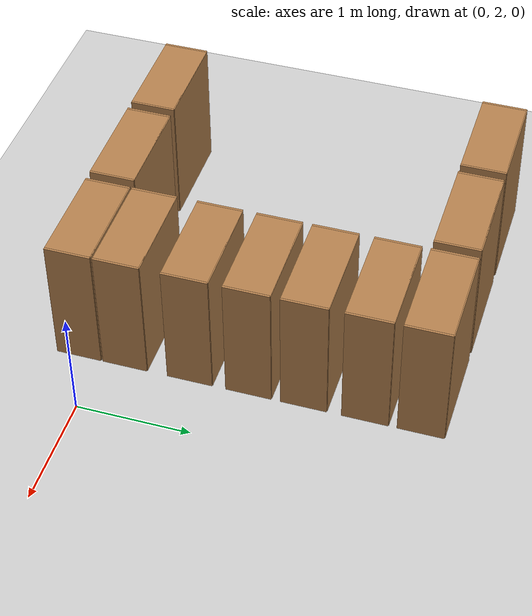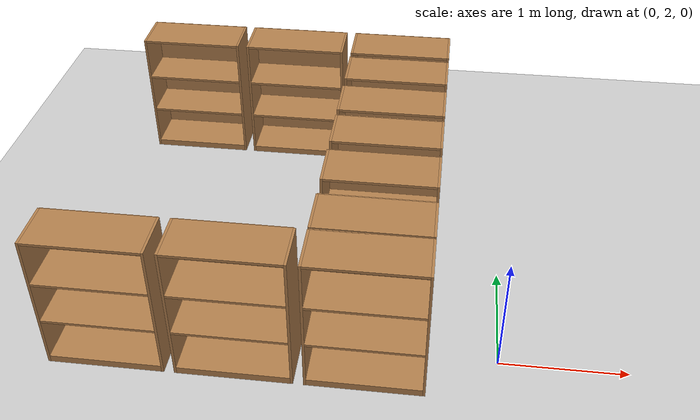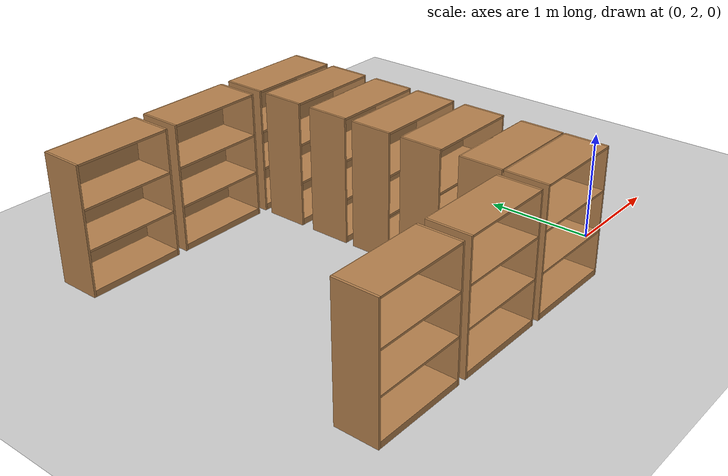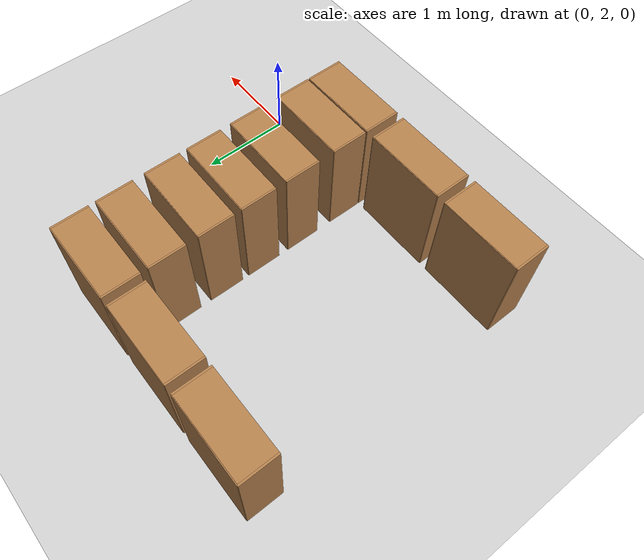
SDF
<sdf version="1.4">
 <world name="default">
  <model name="ground_plane">
   <static>1</static>
   <link name="link">
    <collision name="collision">
     <geometry><plane><normal>0 0 1</normal><size>100 100</size></plane></geometry>
     <surface><friction><ode><mu>100</mu><mu2>50</mu2></ode></friction></surface>
    </collision>
    <visual name="visual">
     <cast_shadows>0</cast_shadows>
     <geometry><plane><normal>0 0 1</normal><size>100 100</size></plane></geometry>
     <material>
      <script><uri>file://media/materials/scripts/gazebo.material</uri><name>Gazebo/Grey</name></script>
     </material>
    </visual>
    <velocity_decay><linear>0</linear><angular>0</angular></velocity_decay>
   </link>
  </model>
  <model name="bookshelf_1">
   <static>1</static>
   <link name="link">
    <inertial><mass>1</mass></inertial>
    <collision name="back">
     <pose>0 0.005 0.6 0 -0 0</pose>
     <geometry><box><size>0.9 0.01 1.2</size></box></geometry>
    </collision>
    <visual name="visual1">
     <pose>0 0.005 0.6 0 -0 0</pose>
     <geometry><box><size>0.9 0.01 1.2</size></box></geometry>
     <material>
      <script><uri>file://media/materials/scripts/gazebo.material</uri><name>Gazebo/Wood</name></script>
     </material>
    </visual>
    <collision name="left_side">
     <pose>0.45 -0.195 0.6 0 -0 0</pose>
     <geometry><box><size>0.02 0.4 1.2</size></box></geometry>
    </collision>
    <visual name="visual2">
     <pose>0.45 -0.195 0.6 0 -0 0</pose>
     <geometry><box><size>0.02 0.4 1.2</size></box></geometry>
     <material>
      <script><uri>file://media/materials/scripts/gazebo.material</uri><name>Gazebo/Wood</name></script>
     </material>
    </visual>
    <collision name="right_side">
     <pose>-0.45 -0.195 0.6 0 -0 0</pose>
     <geometry><box><size>0.02 0.4 1.2</size></box></geometry>
    </collision>
    <visual name="visual3">
     <pose>-0.45 -0.195 0.6 0 -0 0</pose>
     <geometry><box><size>0.02 0.4 1.2</size></box></geometry>
     <material>
      <script><uri>file://media/materials/scripts/gazebo.material</uri><name>Gazebo/Wood</name></script>
     </material>
    </visual>
    <collision name="bottom">
     <pose>0 -0.195 0.03 0 -0 0</pose>
     <geometry><box><size>0.88 0.4 0.06</size></box></geometry>
    </collision>
    <visual name="visual4">
     <pose>0 -0.195 0.03 0 -0 0</pose>
     <geometry><box><size>0.88 0.4 0.06</size></box></geometry>
     <material>
      <script><uri>file://media/materials/scripts/gazebo.material</uri><name>Gazebo/Wood</name></script>
     </material>
    </visual>
    <collision name="top">
     <pose>0 -0.195 1.19 0 -0 0</pose>
     <geometry><box><size>0.88 0.4 0.02</size></box></geometry>
    </collision>
    <visual name="visual5">
     <pose>0 -0.195 1.19 0 -0 0</pose>
     <geometry><box><size>0.88 0.4 0.02</size></box></geometry>
     <material>
      <script><uri>file://media/materials/scripts/gazebo.material</uri><name>Gazebo/Wood</name></script>
     </material>
    </visual>
    <collision name="low_shelf">
     <pose>0 -0.195 0.43 0 -0 0</pose>
     <geometry><box><size>0.88 0.4 0.02</size></box></geometry>
    </collision>
    <visual name="visual6">
     <pose>0 -0.195 0.43 0 -0 0</pose>
     <geometry><box><size>0.88 0.4 0.02</size></box></geometry>
     <material>
      <script><uri>file://media/materials/scripts/gazebo.material</uri><name>Gazebo/Wood</name></script>
     </material>
    </visual>
    <collision name="high_shelf">
     <pose>0 -0.195 0.8 0 -0 0</pose>
     <geometry><box><size>0.88 0.4 0.02</size></box></geometry>
    </collision>
    <visual name="visual7">
     <pose>0 -0.195 0.8 0 -0 0</pose>
     <geometry><box><size>0.88 0.4 0.02</size></box></geometry>
     <material>
      <script><uri>file://media/materials/scripts/gazebo.material</uri><name>Gazebo/Wood</name></script>
     </material>
    </visual>
    <velocity_decay><linear>0</linear><angular>0</angular></velocity_decay>
   </link>
   <pose>-3 2 0 0 -0 0</pose>
  </model>
  <model name="bookshelf_2">
   <static>1</static>
   <link name="link">
    <inertial><mass>1</mass></inertial>
    <collision name="back">
     <pose>0 0.005 0.6 0 -0 0</pose>
     <geometry><box><size>0.9 0.01 1.2</size></box></geometry>
    </collision>
    <visual name="visual1">
     <pose>0 0.005 0.6 0 -0 0</pose>
     <geometry><box><size>0.9 0.01 1.2</size></box></geometry>
     <material>
      <script><uri>file://media/materials/scripts/gazebo.material</uri><name>Gazebo/Wood</name></script>
     </material>
    </visual>
    <collision name="left_side">
     <pose>0.45 -0.195 0.6 0 -0 0</pose>
     <geometry><box><size>0.02 0.4 1.2</size></box></geometry>
    </collision>
    <visual name="visual2">
     <pose>0.45 -0.195 0.6 0 -0 0</pose>
     <geometry><box><size>0.02 0.4 1.2</size></box></geometry>
     <material>
      <script><uri>file://media/materials/scripts/gazebo.material</uri><name>Gazebo/Wood</name></script>
     </material>
    </visual>
    <collision name="right_side">
     <pose>-0.45 -0.195 0.6 0 -0 0</pose>
     <geometry><box><size>0.02 0.4 1.2</size></box></geometry>
    </collision>
    <visual name="visual3">
     <pose>-0.45 -0.195 0.6 0 -0 0</pose>
     <geometry><box><size>0.02 0.4 1.2</size></box></geometry>
     <material>
      <script><uri>file://media/materials/scripts/gazebo.material</uri><name>Gazebo/Wood</name></script>
     </material>
    </visual>
    <collision name="bottom">
     <pose>0 -0.195 0.03 0 -0 0</pose>
     <geometry><box><size>0.88 0.4 0.06</size></box></geometry>
    </collision>
    <visual name="visual4">
     <pose>0 -0.195 0.03 0 -0 0</pose>
     <geometry><box><size>0.88 0.4 0.06</size></box></geometry>
     <material>
      <script><uri>file://media/materials/scripts/gazebo.material</uri><name>Gazebo/Wood</name></script>
     </material>
    </visual>
    <collision name="top">
     <pose>0 -0.195 1.19 0 -0 0</pose>
     <geometry><box><size>0.88 0.4 0.02</size></box></geometry>
    </collision>
    <visual name="visual5">
     <pose>0 -0.195 1.19 0 -0 0</pose>
     <geometry><box><size>0.88 0.4 0.02</size></box></geometry>
     <material>
      <script><uri>file://media/materials/scripts/gazebo.material</uri><name>Gazebo/Wood</name></script>
     </material>
    </visual>
    <collision name="low_shelf">
     <pose>0 -0.195 0.43 0 -0 0</pose>
     <geometry><box><size>0.88 0.4 0.02</size></box></geometry>
    </collision>
    <visual name="visual6">
     <pose>0 -0.195 0.43 0 -0 0</pose>
     <geometry><box><size>0.88 0.4 0.02</size></box></geometry>
     <material>
      <script><uri>file://media/materials/scripts/gazebo.material</uri><name>Gazebo/Wood</name></script>
     </material>
    </visual>
    <collision name="high_shelf">
     <pose>0 -0.195 0.8 0 -0 0</pose>
     <geometry><box><size>0.88 0.4 0.02</size></box></geometry>
    </collision>
    <visual name="visual7">
     <pose>0 -0.195 0.8 0 -0 0</pose>
     <geometry><box><size>0.88 0.4 0.02</size></box></geometry>
     <material>
      <script><uri>file://media/materials/scripts/gazebo.material</uri><name>Gazebo/Wood</name></script>
     </material>
    </visual>
    <velocity_decay><linear>0</linear><angular>0</angular></velocity_decay>
   </link>
   <pose>-2 2 0 0 -0 0</pose>
  </model>
  <model name="bookshelf_3">
   <static>1</static>
   <link name="link">
    <inertial><mass>1</mass></inertial>
    <collision name="back">
     <pose>0 0.005 0.6 0 -0 0</pose>
     <geometry><box><size>0.9 0.01 1.2</size></box></geometry>
    </collision>
    <visual name="visual1">
     <pose>0 0.005 0.6 0 -0 0</pose>
     <geometry><box><size>0.9 0.01 1.2</size></box></geometry>
     <material>
      <script><uri>file://media/materials/scripts/gazebo.material</uri><name>Gazebo/Wood</name></script>
     </material>
    </visual>
    <collision name="left_side">
     <pose>0.45 -0.195 0.6 0 -0 0</pose>
     <geometry><box><size>0.02 0.4 1.2</size></box></geometry>
    </collision>
    <visual name="visual2">
     <pose>0.45 -0.195 0.6 0 -0 0</pose>
     <geometry><box><size>0.02 0.4 1.2</size></box></geometry>
     <material>
      <script><uri>file://media/materials/scripts/gazebo.material</uri><name>Gazebo/Wood</name></script>
     </material>
    </visual>
    <collision name="right_side">
     <pose>-0.45 -0.195 0.6 0 -0 0</pose>
     <geometry><box><size>0.02 0.4 1.2</size></box></geometry>
    </collision>
    <visual name="visual3">
     <pose>-0.45 -0.195 0.6 0 -0 0</pose>
     <geometry><box><size>0.02 0.4 1.2</size></box></geometry>
     <material>
      <script><uri>file://media/materials/scripts/gazebo.material</uri><name>Gazebo/Wood</name></script>
     </material>
    </visual>
    <collision name="bottom">
     <pose>0 -0.195 0.03 0 -0 0</pose>
     <geometry><box><size>0.88 0.4 0.06</size></box></geometry>
    </collision>
    <visual name="visual4">
     <pose>0 -0.195 0.03 0 -0 0</pose>
     <geometry><box><size>0.88 0.4 0.06</size></box></geometry>
     <material>
      <script><uri>file://media/materials/scripts/gazebo.material</uri><name>Gazebo/Wood</name></script>
     </material>
    </visual>
    <collision name="top">
     <pose>0 -0.195 1.19 0 -0 0</pose>
     <geometry><box><size>0.88 0.4 0.02</size></box></geometry>
    </collision>
    <visual name="visual5">
     <pose>0 -0.195 1.19 0 -0 0</pose>
     <geometry><box><size>0.88 0.4 0.02</size></box></geometry>
     <material>
      <script><uri>file://media/materials/scripts/gazebo.material</uri><name>Gazebo/Wood</name></script>
     </material>
    </visual>
    <collision name="low_shelf">
     <pose>0 -0.195 0.43 0 -0 0</pose>
     <geometry><box><size>0.88 0.4 0.02</size></box></geometry>
    </collision>
    <visual name="visual6">
     <pose>0 -0.195 0.43 0 -0 0</pose>
     <geometry><box><size>0.88 0.4 0.02</size></box></geometry>
     <material>
      <script><uri>file://media/materials/scripts/gazebo.material</uri><name>Gazebo/Wood</name></script>
     </material>
    </visual>
    <collision name="high_shelf">
     <pose>0 -0.195 0.8 0 -0 0</pose>
     <geometry><box><size>0.88 0.4 0.02</size></box></geometry>
    </collision>
    <visual name="visual7">
     <pose>0 -0.195 0.8 0 -0 0</pose>
     <geometry><box><size>0.88 0.4 0.02</size></box></geometry>
     <material>
      <script><uri>file://media/materials/scripts/gazebo.material</uri><name>Gazebo/Wood</name></script>
     </material>
    </visual>
    <velocity_decay><linear>0</linear><angular>0</angular></velocity_decay>
   </link>
   <pose>-1 2 0 0 -0 0</pose>
  </model>
  <model name="bookshelf_6">
   <static>1</static>
   <link name="link">
    <inertial><mass>1</mass></inertial>
    <collision name="back">
     <pose>0 0.005 0.6 0 -0 0</pose>
     <geometry><box><size>0.9 0.01 1.2</size></box></geometry>
    </collision>
    <visual name="visual1">
     <pose>0 0.005 0.6 0 -0 0</pose>
     <geometry><box><size>0.9 0.01 1.2</size></box></geometry>
     <material>
      <script><uri>file://media/materials/scripts/gazebo.material</uri><name>Gazebo/Wood</name></script>
     </material>
    </visual>
    <collision name="left_side">
     <pose>0.45 -0.195 0.6 0 -0 0</pose>
     <geometry><box><size>0.02 0.4 1.2</size></box></geometry>
    </collision>
    <visual name="visual2">
     <pose>0.45 -0.195 0.6 0 -0 0</pose>
     <geometry><box><size>0.02 0.4 1.2</size></box></geometry>
     <material>
      <script><uri>file://media/materials/scripts/gazebo.material</uri><name>Gazebo/Wood</name></script>
     </material>
    </visual>
    <collision name="right_side">
     <pose>-0.45 -0.195 0.6 0 -0 0</pose>
     <geometry><box><size>0.02 0.4 1.2</size></box></geometry>
    </collision>
    <visual name="visual3">
     <pose>-0.45 -0.195 0.6 0 -0 0</pose>
     <geometry><box><size>0.02 0.4 1.2</size></box></geometry>
     <material>
      <script><uri>file://media/materials/scripts/gazebo.material</uri><name>Gazebo/Wood</name></script>
     </material>
    </visual>
    <collision name="bottom">
     <pose>0 -0.195 0.03 0 -0 0</pose>
     <geometry><box><size>0.88 0.4 0.06</size></box></geometry>
    </collision>
    <visual name="visual4">
     <pose>0 -0.195 0.03 0 -0 0</pose>
     <geometry><box><size>0.88 0.4 0.06</size></box></geometry>
     <material>
      <script><uri>file://media/materials/scripts/gazebo.material</uri><name>Gazebo/Wood</name></script>
     </material>
    </visual>
    <collision name="top">
     <pose>0 -0.195 1.19 0 -0 0</pose>
     <geometry><box><size>0.88 0.4 0.02</size></box></geometry>
    </collision>
    <visual name="visual5">
     <pose>0 -0.195 1.19 0 -0 0</pose>
     <geometry><box><size>0.88 0.4 0.02</size></box></geometry>
     <material>
      <script><uri>file://media/materials/scripts/gazebo.material</uri><name>Gazebo/Wood</name></script>
     </material>
    </visual>
    <collision name="low_shelf">
     <pose>0 -0.195 0.43 0 -0 0</pose>
     <geometry><box><size>0.88 0.4 0.02</size></box></geometry>
    </collision>
    <visual name="visual6">
     <pose>0 -0.195 0.43 0 -0 0</pose>
     <geometry><box><size>0.88 0.4 0.02</size></box></geometry>
     <material>
      <script><uri>file://media/materials/scripts/gazebo.material</uri><name>Gazebo/Wood</name></script>
     </material>
    </visual>
    <collision name="high_shelf">
     <pose>0 -0.195 0.8 0 -0 0</pose>
     <geometry><box><size>0.88 0.4 0.02</size></box></geometry>
    </collision>
    <visual name="visual7">
     <pose>0 -0.195 0.8 0 -0 0</pose>
     <geometry><box><size>0.88 0.4 0.02</size></box></geometry>
     <material>
      <script><uri>file://media/materials/scripts/gazebo.material</uri><name>Gazebo/Wood</name></script>
     </material>
    </visual>
    <velocity_decay><linear>0</linear><angular>0</angular></velocity_decay>
   </link>
   <pose>-3 5 0 0 -0 0</pose>
  </model>
  <model name="bookshelf_7">
   <static>1</static>
   <link name="link">
    <inertial><mass>1</mass></inertial>
    <collision name="back">
     <pose>0 0.005 0.6 0 -0 0</pose>
     <geometry><box><size>0.9 0.01 1.2</size></box></geometry>
    </collision>
    <visual name="visual1">
     <pose>0 0.005 0.6 0 -0 0</pose>
     <geometry><box><size>0.9 0.01 1.2</size></box></geometry>
     <material>
      <script><uri>file://media/materials/scripts/gazebo.material</uri><name>Gazebo/Wood</name></script>
     </material>
    </visual>
    <collision name="left_side">
     <pose>0.45 -0.195 0.6 0 -0 0</pose>
     <geometry><box><size>0.02 0.4 1.2</size></box></geometry>
    </collision>
    <visual name="visual2">
     <pose>0.45 -0.195 0.6 0 -0 0</pose>
     <geometry><box><size>0.02 0.4 1.2</size></box></geometry>
     <material>
      <script><uri>file://media/materials/scripts/gazebo.material</uri><name>Gazebo/Wood</name></script>
     </material>
    </visual>
    <collision name="right_side">
     <pose>-0.45 -0.195 0.6 0 -0 0</pose>
     <geometry><box><size>0.02 0.4 1.2</size></box></geometry>
    </collision>
    <visual name="visual3">
     <pose>-0.45 -0.195 0.6 0 -0 0</pose>
     <geometry><box><size>0.02 0.4 1.2</size></box></geometry>
     <material>
      <script><uri>file://media/materials/scripts/gazebo.material</uri><name>Gazebo/Wood</name></script>
     </material>
    </visual>
    <collision name="bottom">
     <pose>0 -0.195 0.03 0 -0 0</pose>
     <geometry><box><size>0.88 0.4 0.06</size></box></geometry>
    </collision>
    <visual name="visual4">
     <pose>0 -0.195 0.03 0 -0 0</pose>
     <geometry><box><size>0.88 0.4 0.06</size></box></geometry>
     <material>
      <script><uri>file://media/materials/scripts/gazebo.material</uri><name>Gazebo/Wood</name></script>
     </material>
    </visual>
    <collision name="top">
     <pose>0 -0.195 1.19 0 -0 0</pose>
     <geometry><box><size>0.88 0.4 0.02</size></box></geometry>
    </collision>
    <visual name="visual5">
     <pose>0 -0.195 1.19 0 -0 0</pose>
     <geometry><box><size>0.88 0.4 0.02</size></box></geometry>
     <material>
      <script><uri>file://media/materials/scripts/gazebo.material</uri><name>Gazebo/Wood</name></script>
     </material>
    </visual>
    <collision name="low_shelf">
     <pose>0 -0.195 0.43 0 -0 0</pose>
     <geometry><box><size>0.88 0.4 0.02</size></box></geometry>
    </collision>
    <visual name="visual6">
     <pose>0 -0.195 0.43 0 -0 0</pose>
     <geometry><box><size>0.88 0.4 0.02</size></box></geometry>
     <material>
      <script><uri>file://media/materials/scripts/gazebo.material</uri><name>Gazebo/Wood</name></script>
     </material>
    </visual>
    <collision name="high_shelf">
     <pose>0 -0.195 0.8 0 -0 0</pose>
     <geometry><box><size>0.88 0.4 0.02</size></box></geometry>
    </collision>
    <visual name="visual7">
     <pose>0 -0.195 0.8 0 -0 0</pose>
     <geometry><box><size>0.88 0.4 0.02</size></box></geometry>
     <material>
      <script><uri>file://media/materials/scripts/gazebo.material</uri><name>Gazebo/Wood</name></script>
     </material>
    </visual>
    <velocity_decay><linear>0</linear><angular>0</angular></velocity_decay>
   </link>
   <pose>-2 5 0 0 -0 0</pose>
  </model>
  <model name="bookshelf_8">
   <static>1</static>
   <link name="link">
    <inertial><mass>1</mass></inertial>
    <collision name="back">
     <pose>0 0.005 0.6 0 -0 0</pose>
     <geometry><box><size>0.9 0.01 1.2</size></box></geometry>
    </collision>
    <visual name="visual1">
     <pose>0 0.005 0.6 0 -0 0</pose>
     <geometry><box><size>0.9 0.01 1.2</size></box></geometry>
     <material>
      <script><uri>file://media/materials/scripts/gazebo.material</uri><name>Gazebo/Wood</name></script>
     </material>
    </visual>
    <collision name="left_side">
     <pose>0.45 -0.195 0.6 0 -0 0</pose>
     <geometry><box><size>0.02 0.4 1.2</size></box></geometry>
    </collision>
    <visual name="visual2">
     <pose>0.45 -0.195 0.6 0 -0 0</pose>
     <geometry><box><size>0.02 0.4 1.2</size></box></geometry>
     <material>
      <script><uri>file://media/materials/scripts/gazebo.material</uri><name>Gazebo/Wood</name></script>
     </material>
    </visual>
    <collision name="right_side">
     <pose>-0.45 -0.195 0.6 0 -0 0</pose>
     <geometry><box><size>0.02 0.4 1.2</size></box></geometry>
    </collision>
    <visual name="visual3">
     <pose>-0.45 -0.195 0.6 0 -0 0</pose>
     <geometry><box><size>0.02 0.4 1.2</size></box></geometry>
     <material>
      <script><uri>file://media/materials/scripts/gazebo.material</uri><name>Gazebo/Wood</name></script>
     </material>
    </visual>
    <collision name="bottom">
     <pose>0 -0.195 0.03 0 -0 0</pose>
     <geometry><box><size>0.88 0.4 0.06</size></box></geometry>
    </collision>
    <visual name="visual4">
     <pose>0 -0.195 0.03 0 -0 0</pose>
     <geometry><box><size>0.88 0.4 0.06</size></box></geometry>
     <material>
      <script><uri>file://media/materials/scripts/gazebo.material</uri><name>Gazebo/Wood</name></script>
     </material>
    </visual>
    <collision name="top">
     <pose>0 -0.195 1.19 0 -0 0</pose>
     <geometry><box><size>0.88 0.4 0.02</size></box></geometry>
    </collision>
    <visual name="visual5">
     <pose>0 -0.195 1.19 0 -0 0</pose>
     <geometry><box><size>0.88 0.4 0.02</size></box></geometry>
     <material>
      <script><uri>file://media/materials/scripts/gazebo.material</uri><name>Gazebo/Wood</name></script>
     </material>
    </visual>
    <collision name="low_shelf">
     <pose>0 -0.195 0.43 0 -0 0</pose>
     <geometry><box><size>0.88 0.4 0.02</size></box></geometry>
    </collision>
    <visual name="visual6">
     <pose>0 -0.195 0.43 0 -0 0</pose>
     <geometry><box><size>0.88 0.4 0.02</size></box></geometry>
     <material>
      <script><uri>file://media/materials/scripts/gazebo.material</uri><name>Gazebo/Wood</name></script>
     </material>
    </visual>
    <collision name="high_shelf">
     <pose>0 -0.195 0.8 0 -0 0</pose>
     <geometry><box><size>0.88 0.4 0.02</size></box></geometry>
    </collision>
    <visual name="visual7">
     <pose>0 -0.195 0.8 0 -0 0</pose>
     <geometry><box><size>0.88 0.4 0.02</size></box></geometry>
     <material>
      <script><uri>file://media/materials/scripts/gazebo.material</uri><name>Gazebo/Wood</name></script>
     </material>
    </visual>
    <velocity_decay><linear>0</linear><angular>0</angular></velocity_decay>
   </link>
   <pose>-1 5 0 0 -0 0</pose>
  </model>
  <model name="bookshelf_11">
   <static>1</static>
   <link name="link">
    <inertial><mass>1</mass></inertial>
    <collision name="back">
     <pose>0 0.005 0.6 0 -0 0</pose>
     <geometry><box><size>0.9 0.01 1.2</size></box></geometry>
    </collision>
    <visual name="visual1">
     <pose>0 0.005 0.6 0 -0 0</pose>
     <geometry><box><size>0.9 0.01 1.2</size></box></geometry>
     <material>
      <script><uri>file://media/materials/scripts/gazebo.material</uri><name>Gazebo/Wood</name></script>
     </material>
    </visual>
    <collision name="left_side">
     <pose>0.45 -0.195 0.6 0 -0 0</pose>
     <geometry><box><size>0.02 0.4 1.2</size></box></geometry>
    </collision>
    <visual name="visual2">
     <pose>0.45 -0.195 0.6 0 -0 0</pose>
     <geometry><box><size>0.02 0.4 1.2</size></box></geometry>
     <material>
      <script><uri>file://media/materials/scripts/gazebo.material</uri><name>Gazebo/Wood</name></script>
     </material>
    </visual>
    <collision name="right_side">
     <pose>-0.45 -0.195 0.6 0 -0 0</pose>
     <geometry><box><size>0.02 0.4 1.2</size></box></geometry>
    </collision>
    <visual name="visual3">
     <pose>-0.45 -0.195 0.6 0 -0 0</pose>
     <geometry><box><size>0.02 0.4 1.2</size></box></geometry>
     <material>
      <script><uri>file://media/materials/scripts/gazebo.material</uri><name>Gazebo/Wood</name></script>
     </material>
    </visual>
    <collision name="bottom">
     <pose>0 -0.195 0.03 0 -0 0</pose>
     <geometry><box><size>0.88 0.4 0.06</size></box></geometry>
    </collision>
    <visual name="visual4">
     <pose>0 -0.195 0.03 0 -0 0</pose>
     <geometry><box><size>0.88 0.4 0.06</size></box></geometry>
     <material>
      <script><uri>file://media/materials/scripts/gazebo.material</uri><name>Gazebo/Wood</name></script>
     </material>
    </visual>
    <collision name="top">
     <pose>0 -0.195 1.19 0 -0 0</pose>
     <geometry><box><size>0.88 0.4 0.02</size></box></geometry>
    </collision>
    <visual name="visual5">
     <pose>0 -0.195 1.19 0 -0 0</pose>
     <geometry><box><size>0.88 0.4 0.02</size></box></geometry>
     <material>
      <script><uri>file://media/materials/scripts/gazebo.material</uri><name>Gazebo/Wood</name></script>
     </material>
    </visual>
    <collision name="low_shelf">
     <pose>0 -0.195 0.43 0 -0 0</pose>
     <geometry><box><size>0.88 0.4 0.02</size></box></geometry>
    </collision>
    <visual name="visual6">
     <pose>0 -0.195 0.43 0 -0 0</pose>
     <geometry><box><size>0.88 0.4 0.02</size></box></geometry>
     <material>
      <script><uri>file://media/materials/scripts/gazebo.material</uri><name>Gazebo/Wood</name></script>
     </material>
    </visual>
    <collision name="high_shelf">
     <pose>0 -0.195 0.8 0 -0 0</pose>
     <geometry><box><size>0.88 0.4 0.02</size></box></geometry>
    </collision>
    <visual name="visual7">
     <pose>0 -0.195 0.8 0 -0 0</pose>
     <geometry><box><size>0.88 0.4 0.02</size></box></geometry>
     <material>
      <script><uri>file://media/materials/scripts/gazebo.material</uri><name>Gazebo/Wood</name></script>
     </material>
    </visual>
    <velocity_decay><linear>0</linear><angular>0</angular></velocity_decay>
   </link>
   <pose>-1 2.41816 0 0 -0 0</pose>
  </model>
  <model name="bookshelf_12">
   <static>1</static>
   <link name="link">
    <inertial><mass>1</mass></inertial>
    <collision name="back">
     <pose>0 0.005 0.6 0 -0 0</pose>
     <geometry><box><size>0.9 0.01 1.2</size></box></geometry>
    </collision>
    <visual name="visual1">
     <pose>0 0.005 0.6 0 -0 0</pose>
     <geometry><box><size>0.9 0.01 1.2</size></box></geometry>
     <material>
      <script><uri>file://media/materials/scripts/gazebo.material</uri><name>Gazebo/Wood</name></script>
     </material>
    </visual>
    <collision name="left_side">
     <pose>0.45 -0.195 0.6 0 -0 0</pose>
     <geometry><box><size>0.02 0.4 1.2</size></box></geometry>
    </collision>
    <visual name="visual2">
     <pose>0.45 -0.195 0.6 0 -0 0</pose>
     <geometry><box><size>0.02 0.4 1.2</size></box></geometry>
     <material>
      <script><uri>file://media/materials/scripts/gazebo.material</uri><name>Gazebo/Wood</name></script>
     </material>
    </visual>
    <collision name="right_side">
     <pose>-0.45 -0.195 0.6 0 -0 0</pose>
     <geometry><box><size>0.02 0.4 1.2</size></box></geometry>
    </collision>
    <visual name="visual3">
     <pose>-0.45 -0.195 0.6 0 -0 0</pose>
     <geometry><box><size>0.02 0.4 1.2</size></box></geometry>
     <material>
      <script><uri>file://media/materials/scripts/gazebo.material</uri><name>Gazebo/Wood</name></script>
     </material>
    </visual>
    <collision name="bottom">
     <pose>0 -0.195 0.03 0 -0 0</pose>
     <geometry><box><size>0.88 0.4 0.06</size></box></geometry>
    </collision>
    <visual name="visual4">
     <pose>0 -0.195 0.03 0 -0 0</pose>
     <geometry><box><size>0.88 0.4 0.06</size></box></geometry>
     <material>
      <script><uri>file://media/materials/scripts/gazebo.material</uri><name>Gazebo/Wood</name></script>
     </material>
    </visual>
    <collision name="top">
     <pose>0 -0.195 1.19 0 -0 0</pose>
     <geometry><box><size>0.88 0.4 0.02</size></box></geometry>
    </collision>
    <visual name="visual5">
     <pose>0 -0.195 1.19 0 -0 0</pose>
     <geometry><box><size>0.88 0.4 0.02</size></box></geometry>
     <material>
      <script><uri>file://media/materials/scripts/gazebo.material</uri><name>Gazebo/Wood</name></script>
     </material>
    </visual>
    <collision name="low_shelf">
     <pose>0 -0.195 0.43 0 -0 0</pose>
     <geometry><box><size>0.88 0.4 0.02</size></box></geometry>
    </collision>
    <visual name="visual6">
     <pose>0 -0.195 0.43 0 -0 0</pose>
     <geometry><box><size>0.88 0.4 0.02</size></box></geometry>
     <material>
      <script><uri>file://media/materials/scripts/gazebo.material</uri><name>Gazebo/Wood</name></script>
     </material>
    </visual>
    <collision name="high_shelf">
     <pose>0 -0.195 0.8 0 -0 0</pose>
     <geometry><box><size>0.88 0.4 0.02</size></box></geometry>
    </collision>
    <visual name="visual7">
     <pose>0 -0.195 0.8 0 -0 0</pose>
     <geometry><box><size>0.88 0.4 0.02</size></box></geometry>
     <material>
      <script><uri>file://media/materials/scripts/gazebo.material</uri><name>Gazebo/Wood</name></script>
     </material>
    </visual>
    <velocity_decay><linear>0</linear><angular>0</angular></velocity_decay>
   </link>
   <pose>-1 3 0 0 -0 0</pose>
  </model>
  <model name="bookshelf_18">
   <static>1</static>
   <link name="link">
    <inertial><mass>1</mass></inertial>
    <collision name="back">
     <pose>0 0.005 0.6 0 -0 0</pose>
     <geometry><box><size>0.9 0.01 1.2</size></box></geometry>
    </collision>
    <visual name="visual1">
     <pose>0 0.005 0.6 0 -0 0</pose>
     <geometry><box><size>0.9 0.01 1.2</size></box></geometry>
     <material>
      <script><uri>file://media/materials/scripts/gazebo.material</uri><name>Gazebo/Wood</name></script>
     </material>
    </visual>
    <collision name="left_side">
     <pose>0.45 -0.195 0.6 0 -0 0</pose>
     <geometry><box><size>0.02 0.4 1.2</size></box></geometry>
    </collision>
    <visual name="visual2">
     <pose>0.45 -0.195 0.6 0 -0 0</pose>
     <geometry><box><size>0.02 0.4 1.2</size></box></geometry>
     <material>
      <script><uri>file://media/materials/scripts/gazebo.material</uri><name>Gazebo/Wood</name></script>
     </material>
    </visual>
    <collision name="right_side">
     <pose>-0.45 -0.195 0.6 0 -0 0</pose>
     <geometry><box><size>0.02 0.4 1.2</size></box></geometry>
    </collision>
    <visual name="visual3">
     <pose>-0.45 -0.195 0.6 0 -0 0</pose>
     <geometry><box><size>0.02 0.4 1.2</size></box></geometry>
     <material>
      <script><uri>file://media/materials/scripts/gazebo.material</uri><name>Gazebo/Wood</name></script>
     </material>
    </visual>
    <collision name="bottom">
     <pose>0 -0.195 0.03 0 -0 0</pose>
     <geometry><box><size>0.88 0.4 0.06</size></box></geometry>
    </collision>
    <visual name="visual4">
     <pose>0 -0.195 0.03 0 -0 0</pose>
     <geometry><box><size>0.88 0.4 0.06</size></box></geometry>
     <material>
      <script><uri>file://media/materials/scripts/gazebo.material</uri><name>Gazebo/Wood</name></script>
     </material>
    </visual>
    <collision name="top">
     <pose>0 -0.195 1.19 0 -0 0</pose>
     <geometry><box><size>0.88 0.4 0.02</size></box></geometry>
    </collision>
    <visual name="visual5">
     <pose>0 -0.195 1.19 0 -0 0</pose>
     <geometry><box><size>0.88 0.4 0.02</size></box></geometry>
     <material>
      <script><uri>file://media/materials/scripts/gazebo.material</uri><name>Gazebo/Wood</name></script>
     </material>
    </visual>
    <collision name="low_shelf">
     <pose>0 -0.195 0.43 0 -0 0</pose>
     <geometry><box><size>0.88 0.4 0.02</size></box></geometry>
    </collision>
    <visual name="visual6">
     <pose>0 -0.195 0.43 0 -0 0</pose>
     <geometry><box><size>0.88 0.4 0.02</size></box></geometry>
     <material>
      <script><uri>file://media/materials/scripts/gazebo.material</uri><name>Gazebo/Wood</name></script>
     </material>
    </visual>
    <collision name="high_shelf">
     <pose>0 -0.195 0.8 0 -0 0</pose>
     <geometry><box><size>0.88 0.4 0.02</size></box></geometry>
    </collision>
    <visual name="visual7">
     <pose>0 -0.195 0.8 0 -0 0</pose>
     <geometry><box><size>0.88 0.4 0.02</size></box></geometry>
     <material>
      <script><uri>file://media/materials/scripts/gazebo.material</uri><name>Gazebo/Wood</name></script>
     </material>
    </visual>
    <velocity_decay><linear>0</linear><angular>0</angular></velocity_decay>
   </link>
   <pose>-1 4.52706 0 0 -0 0</pose>
  </model>
  <model name="bookshelf_19">
   <static>1</static>
   <link name="link">
    <inertial><mass>1</mass></inertial>
    <collision name="back">
     <pose>0 0.005 0.6 0 -0 0</pose>
     <geometry><box><size>0.9 0.01 1.2</size></box></geometry>
    </collision>
    <visual name="visual1">
     <pose>0 0.005 0.6 0 -0 0</pose>
     <geometry><box><size>0.9 0.01 1.2</size></box></geometry>
     <material>
      <script><uri>file://media/materials/scripts/gazebo.material</uri><name>Gazebo/Wood</name></script>
     </material>
    </visual>
    <collision name="left_side">
     <pose>0.45 -0.195 0.6 0 -0 0</pose>
     <geometry><box><size>0.02 0.4 1.2</size></box></geometry>
    </collision>
    <visual name="visual2">
     <pose>0.45 -0.195 0.6 0 -0 0</pose>
     <geometry><box><size>0.02 0.4 1.2</size></box></geometry>
     <material>
      <script><uri>file://media/materials/scripts/gazebo.material</uri><name>Gazebo/Wood</name></script>
     </material>
    </visual>
    <collision name="right_side">
     <pose>-0.45 -0.195 0.6 0 -0 0</pose>
     <geometry><box><size>0.02 0.4 1.2</size></box></geometry>
    </collision>
    <visual name="visual3">
     <pose>-0.45 -0.195 0.6 0 -0 0</pose>
     <geometry><box><size>0.02 0.4 1.2</size></box></geometry>
     <material>
      <script><uri>file://media/materials/scripts/gazebo.material</uri><name>Gazebo/Wood</name></script>
     </material>
    </visual>
    <collision name="bottom">
     <pose>0 -0.195 0.03 0 -0 0</pose>
     <geometry><box><size>0.88 0.4 0.06</size></box></geometry>
    </collision>
    <visual name="visual4">
     <pose>0 -0.195 0.03 0 -0 0</pose>
     <geometry><box><size>0.88 0.4 0.06</size></box></geometry>
     <material>
      <script><uri>file://media/materials/scripts/gazebo.material</uri><name>Gazebo/Wood</name></script>
     </material>
    </visual>
    <collision name="top">
     <pose>0 -0.195 1.19 0 -0 0</pose>
     <geometry><box><size>0.88 0.4 0.02</size></box></geometry>
    </collision>
    <visual name="visual5">
     <pose>0 -0.195 1.19 0 -0 0</pose>
     <geometry><box><size>0.88 0.4 0.02</size></box></geometry>
     <material>
      <script><uri>file://media/materials/scripts/gazebo.material</uri><name>Gazebo/Wood</name></script>
     </material>
    </visual>
    <collision name="low_shelf">
     <pose>0 -0.195 0.43 0 -0 0</pose>
     <geometry><box><size>0.88 0.4 0.02</size></box></geometry>
    </collision>
    <visual name="visual6">
     <pose>0 -0.195 0.43 0 -0 0</pose>
     <geometry><box><size>0.88 0.4 0.02</size></box></geometry>
     <material>
      <script><uri>file://media/materials/scripts/gazebo.material</uri><name>Gazebo/Wood</name></script>
     </material>
    </visual>
    <collision name="high_shelf">
     <pose>0 -0.195 0.8 0 -0 0</pose>
     <geometry><box><size>0.88 0.4 0.02</size></box></geometry>
    </collision>
    <visual name="visual7">
     <pose>0 -0.195 0.8 0 -0 0</pose>
     <geometry><box><size>0.88 0.4 0.02</size></box></geometry>
     <material>
      <script><uri>file://media/materials/scripts/gazebo.material</uri><name>Gazebo/Wood</name></script>
     </material>
    </visual>
    <velocity_decay><linear>0</linear><angular>0</angular></velocity_decay>
   </link>
   <pose>-1 4 0 0 -0 0</pose>
  </model>
  <model name="bookshelf_20">
   <static>1</static>
   <link name="link">
    <inertial><mass>1</mass></inertial>
    <collision name="back">
     <pose>0 0.005 0.6 0 -0 0</pose>
     <geometry><box><size>0.9 0.01 1.2</size></box></geometry>
    </collision>
    <visual name="visual1">
     <pose>0 0.005 0.6 0 -0 0</pose>
     <geometry><box><size>0.9 0.01 1.2</size></box></geometry>
     <material>
      <script><uri>file://media/materials/scripts/gazebo.material</uri><name>Gazebo/Wood</name></script>
     </material>
    </visual>
    <collision name="left_side">
     <pose>0.45 -0.195 0.6 0 -0 0</pose>
     <geometry><box><size>0.02 0.4 1.2</size></box></geometry>
    </collision>
    <visual name="visual2">
     <pose>0.45 -0.195 0.6 0 -0 0</pose>
     <geometry><box><size>0.02 0.4 1.2</size></box></geometry>
     <material>
      <script><uri>file://media/materials/scripts/gazebo.material</uri><name>Gazebo/Wood</name></script>
     </material>
    </visual>
    <collision name="right_side">
     <pose>-0.45 -0.195 0.6 0 -0 0</pose>
     <geometry><box><size>0.02 0.4 1.2</size></box></geometry>
    </collision>
    <visual name="visual3">
     <pose>-0.45 -0.195 0.6 0 -0 0</pose>
     <geometry><box><size>0.02 0.4 1.2</size></box></geometry>
     <material>
      <script><uri>file://media/materials/scripts/gazebo.material</uri><name>Gazebo/Wood</name></script>
     </material>
    </visual>
    <collision name="bottom">
     <pose>0 -0.195 0.03 0 -0 0</pose>
     <geometry><box><size>0.88 0.4 0.06</size></box></geometry>
    </collision>
    <visual name="visual4">
     <pose>0 -0.195 0.03 0 -0 0</pose>
     <geometry><box><size>0.88 0.4 0.06</size></box></geometry>
     <material>
      <script><uri>file://media/materials/scripts/gazebo.material</uri><name>Gazebo/Wood</name></script>
     </material>
    </visual>
    <collision name="top">
     <pose>0 -0.195 1.19 0 -0 0</pose>
     <geometry><box><size>0.88 0.4 0.02</size></box></geometry>
    </collision>
    <visual name="visual5">
     <pose>0 -0.195 1.19 0 -0 0</pose>
     <geometry><box><size>0.88 0.4 0.02</size></box></geometry>
     <material>
      <script><uri>file://media/materials/scripts/gazebo.material</uri><name>Gazebo/Wood</name></script>
     </material>
    </visual>
    <collision name="low_shelf">
     <pose>0 -0.195 0.43 0 -0 0</pose>
     <geometry><box><size>0.88 0.4 0.02</size></box></geometry>
    </collision>
    <visual name="visual6">
     <pose>0 -0.195 0.43 0 -0 0</pose>
     <geometry><box><size>0.88 0.4 0.02</size></box></geometry>
     <material>
      <script><uri>file://media/materials/scripts/gazebo.material</uri><name>Gazebo/Wood</name></script>
     </material>
    </visual>
    <collision name="high_shelf">
     <pose>0 -0.195 0.8 0 -0 0</pose>
     <geometry><box><size>0.88 0.4 0.02</size></box></geometry>
    </collision>
    <visual name="visual7">
     <pose>0 -0.195 0.8 0 -0 0</pose>
     <geometry><box><size>0.88 0.4 0.02</size></box></geometry>
     <material>
      <script><uri>file://media/materials/scripts/gazebo.material</uri><name>Gazebo/Wood</name></script>
     </material>
    </visual>
    <velocity_decay><linear>0</linear><angular>0</angular></velocity_decay>
   </link>
   <pose>-1 3.51945 0 0 -0 0</pose>
  </model>
 </world>
</sdf>
